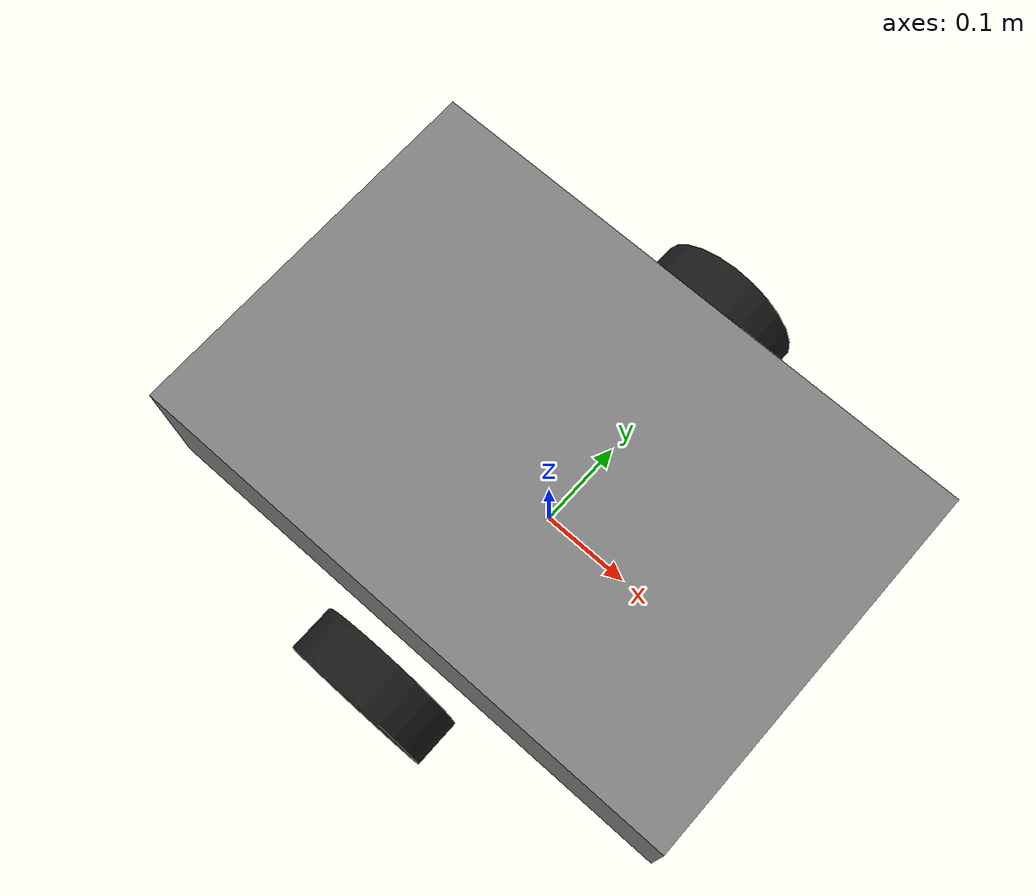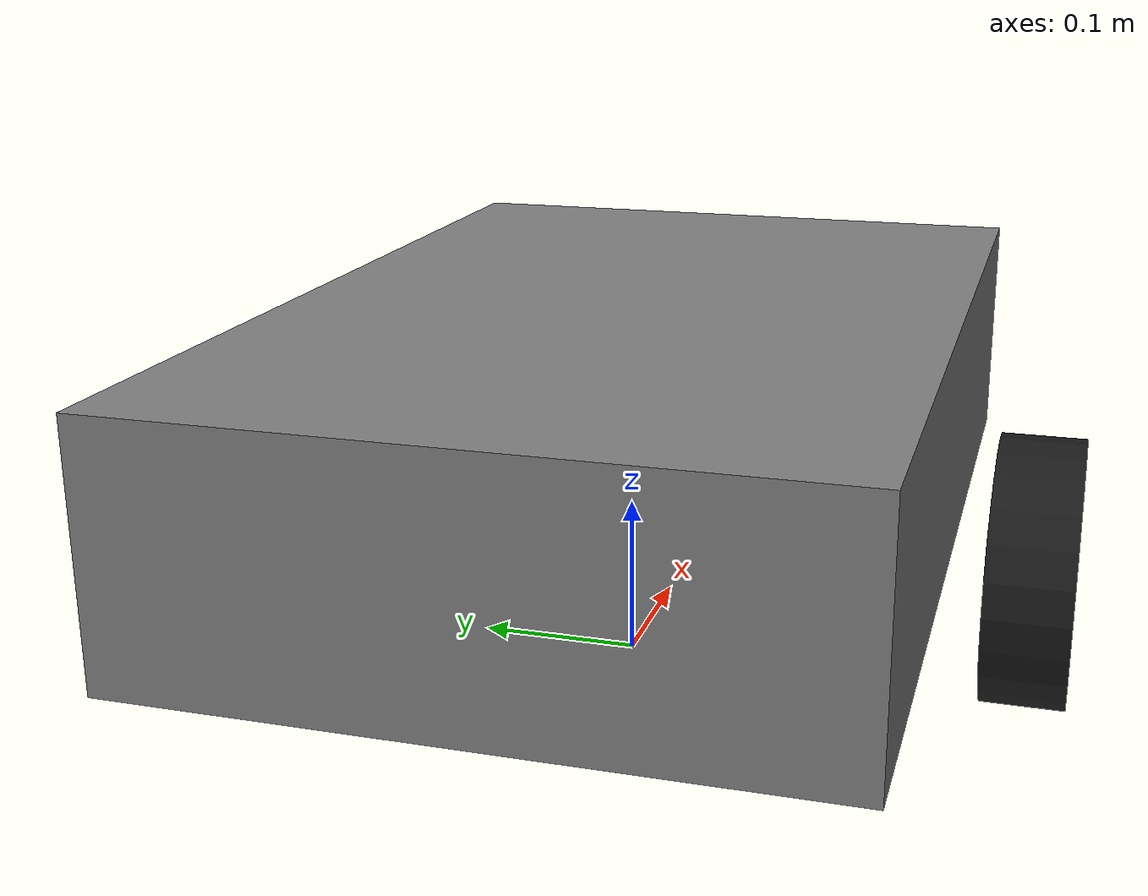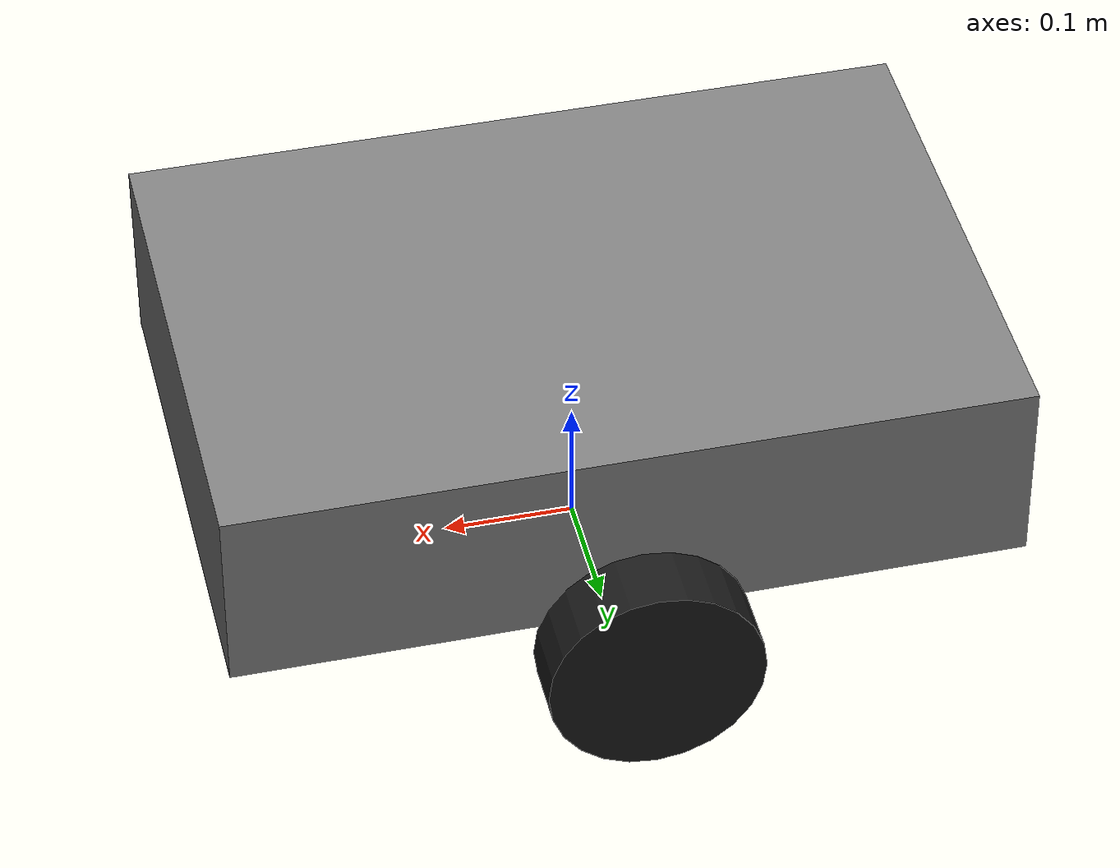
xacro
<?xml version="1.0"?>
<robot xmlns:xacro="http://www.ros.org/wiki/xacro" name="ivastbot">

  <!-- Parameters (TODO: đo thực tế và cập nhật)                    -->
  <xacro:property name="wheel_separation" value="0.50" />
  <xacro:property name="wheel_radius" value="0.081" />
  <xacro:property name="wheel_width" value="0.05" />
  <xacro:property name="base_length" value="0.60" />
  <xacro:property name="base_width" value="0.40" />
  <xacro:property name="base_height" value="0.15" />

  <!-- Base Link                                                     -->
  <link name="base_link">
    <visual>
      <geometry>
        <box size="${base_length} ${base_width} ${base_height}" />
      </geometry>
      <origin xyz="0 0 ${base_height/2 + wheel_radius}" rpy="0 0 0" />
      <material name="grey">
        <color rgba="0.5 0.5 0.5 1.0" />
      </material>
    </visual>
    <collision>
      <geometry>
        <box size="${base_length} ${base_width} ${base_height}" />
      </geometry>
      <origin xyz="0 0 ${base_height/2 + wheel_radius}" rpy="0 0 0" />
    </collision>
    <inertial>
      <mass value="20.0" />
      <inertia ixx="0.1" ixy="0" ixz="0" iyy="0.1" iyz="0" izz="0.1" />
    </inertial>
  </link>

  <!-- Left Wheel                                                    -->
  <link name="left_wheel">
    <visual>
      <geometry>
        <cylinder radius="${wheel_radius}" length="${wheel_width}" />
      </geometry>
      <material name="black">
        <color rgba="0.1 0.1 0.1 1.0" />
      </material>
    </visual>
    <collision>
      <geometry>
        <cylinder radius="${wheel_radius}" length="${wheel_width}" />
      </geometry>
    </collision>
    <inertial>
      <mass value="2.0" />
      <inertia ixx="0.01" ixy="0" ixz="0" iyy="0.01" iyz="0" izz="0.01" />
    </inertial>
  </link>

  <joint name="left_wheel_joint" type="continuous">
    <parent link="base_link" />
    <child link="left_wheel" />
    <origin xyz="0 ${wheel_separation/2} ${wheel_radius}" rpy="${-pi/2} 0 0" />
    <axis xyz="0 0 1" />
  </joint>

  <!-- Right Wheel                                                   -->
  <link name="right_wheel">
    <visual>
      <geometry>
        <cylinder radius="${wheel_radius}" length="${wheel_width}" />
      </geometry>
      <material name="black">
        <color rgba="0.1 0.1 0.1 1.0" />
      </material>
    </visual>
    <collision>
      <geometry>
        <cylinder radius="${wheel_radius}" length="${wheel_width}" />
      </geometry>
    </collision>
    <inertial>
      <mass value="2.0" />
      <inertia ixx="0.01" ixy="0" ixz="0" iyy="0.01" iyz="0" izz="0.01" />
    </inertial>
  </link>

  <joint name="right_wheel_joint" type="continuous">
    <parent link="base_link" />
    <child link="right_wheel" />
    <origin xyz="0 ${-wheel_separation/2} ${wheel_radius}" rpy="${-pi/2} 0 0" />
    <axis xyz="0 0 1" />
  </joint>

  <!-- ros2_control Hardware Interface                               -->
  <ros2_control name="IDS830System" type="system">
    <hardware>
      <plugin>ids830_hw/IDS830HW</plugin>
      <param name="can_channel">/dev/ttyACM1</param>
      <param name="serial_baudrate">921600</param>
      <param name="left_motor_id">4</param>
      <param name="right_motor_id">2</param>
      <param name="gear_ratio">1</param>
      <param name="encoder_ppr">2500</param>
      <param name="wheel_radius_m">0.081</param>
      <param name="wheel_track_m">0.50</param>
      <param name="can_speed_code">6</param>
    </hardware>
    <joint name="left_wheel_joint">
      <command_interface name="velocity" />
      <state_interface name="position" />
      <state_interface name="velocity" />
    </joint>
    <joint name="right_wheel_joint">
      <command_interface name="velocity" />
      <state_interface name="position" />
      <state_interface name="velocity" />
    </joint>
  </ros2_control>

</robot>
